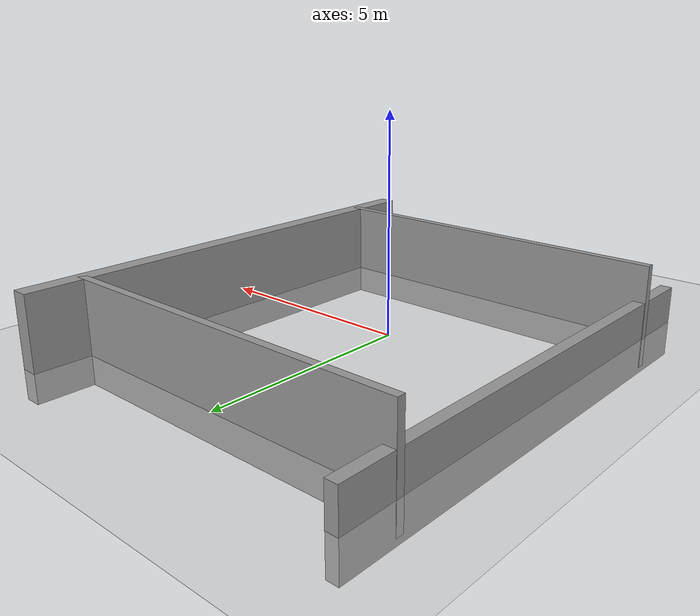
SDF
<sdf version="1.7">
 <world name="default">
  <light name="sun" type="directional">
   <pose>0 0 10 0 -0 0</pose>
   <diffuse>0.8 0.8 0.8 1</diffuse>
   <specular>0.2 0.2 0.2 1</specular>
   <attenuation>
    <range>1000</range>
    <constant>0.9</constant>
    <linear>0.01</linear>
    <quadratic>0.001</quadratic>
   </attenuation>
   <direction>-0.5 0.1 -0.9</direction>
   <spot><inner_angle>0</inner_angle><outer_angle>0</outer_angle><falloff>0</falloff></spot>
  </light>
  <model name="ground_plane">
   <static>1</static>
   <link name="link">
    <collision name="collision">
     <geometry><plane><normal>0 0 1</normal><size>100 100</size></plane></geometry>
     <surface>
      <contact><collide_bitmask>65535</collide_bitmask></contact>
      <friction><ode><mu>100</mu><mu2>50</mu2></ode></friction>
     </surface>
    </collision>
    <visual name="visual">
     <cast_shadows>0</cast_shadows>
     <geometry><plane><normal>0 0 1</normal><size>100 100</size></plane></geometry>
     <material>
      <script><uri>file://media/materials/scripts/gazebo.material</uri><name>Gazebo/Grey</name></script>
     </material>
    </visual>
   </link>
  </model>
  <gravity>0 0 -9.8</gravity>
  <magnetic_field>6e-06 2.3e-05 -4.2e-05</magnetic_field>
  <atmosphere type="adiabatic"/>
  <physics type="ode">
   <max_step_size>0.001</max_step_size>
   <real_time_factor>1</real_time_factor>
   <real_time_update_rate>1000</real_time_update_rate>
  </physics>
  <scene><ambient>0.4 0.4 0.4 1</ambient><background>0.7 0.7 0.7 1</background><shadows>1</shadows></scene>
  <spherical_coordinates>
   <surface_model>EARTH_WGS84</surface_model>
   <latitude_deg>0</latitude_deg>
   <longitude_deg>0</longitude_deg>
   <elevation>0</elevation>
   <heading_deg>0</heading_deg>
  </spherical_coordinates>
  <model name="wall_real">
   <link name="link_0">
    <inertial>
     <mass>6.36824</mass>
     <inertia><ixx>54.2398</ixx><ixy>0</ixy><ixz>0</ixz><iyy>3.02135</iyy><iyz>0</iyz><izz>51.2978</izz></inertia>
    </inertial>
    <pose>1e-06 3e-06 0 0 -0 0</pose>
    <visual name="visual">
     <geometry><box><size>0.405112 11.2086 2.37035</size></box></geometry>
     <material>
      <lighting>1</lighting>
      <script><uri>file://media/materials/scripts/gazebo.material</uri><name>Gazebo/Grey</name></script>
      <shader type="pixel"/>
     </material>
    </visual>
    <collision name="collision">
     <geometry><box><size>0.405112 11.2086 2.37035</size></box></geometry>
     <surface>
      <friction>
       <ode><mu>1</mu><mu2>1</mu2><fdir1>0 0 0</fdir1><slip1>0</slip1><slip2>0</slip2></ode>
       <torsional>
        <coefficient>1</coefficient>
        <patch_radius>0</patch_radius>
        <surface_radius>0</surface_radius>
        <use_patch_radius>1</use_patch_radius>
        <ode><slip>0</slip></ode>
       </torsional>
      </friction>
      <bounce><restitution_coefficient>0</restitution_coefficient><threshold>1e+06</threshold></bounce>
      <contact>
       <collide_without_contact>0</collide_without_contact>
       <collide_without_contact_bitmask>1</collide_without_contact_bitmask>
       <collide_bitmask>1</collide_bitmask>
       <ode>
        <soft_cfm>0</soft_cfm>
        <soft_erp>0.2</soft_erp>
        <kp>1e+13</kp>
        <kd>1</kd>
        <max_vel>0.01</max_vel>
        <min_depth>0</min_depth>
       </ode>
       <bullet>
        <split_impulse>1</split_impulse>
        <split_impulse_penetration_threshold>-0.01</split_impulse_penetration_threshold>
        <soft_cfm>0</soft_cfm>
        <soft_erp>0.2</soft_erp>
        <kp>1e+13</kp>
        <kd>1</kd>
       </bullet>
      </contact>
     </surface>
    </collision>
   </link>
   <static>0</static>
   <pose>4.19255 0.696276 0.5 0 -0 0</pose>
  </model>
  <model name="wall_real_0">
   <link name="link_0">
    <inertial>
     <mass>6.36824</mass>
     <inertia><ixx>54.2398</ixx><ixy>0</ixy><ixz>0</ixz><iyy>3.02135</iyy><iyz>0</iyz><izz>51.2978</izz></inertia>
    </inertial>
    <pose>1e-06 3e-06 0 0 -0 0</pose>
    <visual name="visual">
     <geometry><box><size>0.273387 11.2551 1.66921</size></box></geometry>
     <material>
      <lighting>1</lighting>
      <script><uri>file://media/materials/scripts/gazebo.material</uri><name>Gazebo/Grey</name></script>
      <shader type="pixel"/>
     </material>
    </visual>
    <collision name="collision">
     <geometry><box><size>0.273387 11.2551 1.66921</size></box></geometry>
     <surface>
      <friction>
       <ode><mu>1</mu><mu2>1</mu2><fdir1>0 0 0</fdir1><slip1>0</slip1><slip2>0</slip2></ode>
       <torsional>
        <coefficient>1</coefficient>
        <patch_radius>0</patch_radius>
        <surface_radius>0</surface_radius>
        <use_patch_radius>1</use_patch_radius>
        <ode><slip>0</slip></ode>
       </torsional>
      </friction>
      <bounce><restitution_coefficient>0</restitution_coefficient><threshold>1e+06</threshold></bounce>
      <contact>
       <collide_without_contact>0</collide_without_contact>
       <collide_without_contact_bitmask>1</collide_without_contact_bitmask>
       <collide_bitmask>1</collide_bitmask>
       <ode>
        <soft_cfm>0</soft_cfm>
        <soft_erp>0.2</soft_erp>
        <kp>1e+13</kp>
        <kd>1</kd>
        <max_vel>0.01</max_vel>
        <min_depth>0</min_depth>
       </ode>
       <bullet>
        <split_impulse>1</split_impulse>
        <split_impulse_penetration_threshold>-0.01</split_impulse_penetration_threshold>
        <soft_cfm>0</soft_cfm>
        <soft_erp>0.2</soft_erp>
        <kp>1e+13</kp>
        <kd>1</kd>
       </bullet>
      </contact>
     </surface>
    </collision>
   </link>
   <static>0</static>
   <pose>-4.21092 0.592586 0 0 -0 0</pose>
  </model>
  <model name="wall_real_clone">
   <link name="link_0">
    <inertial>
     <mass>6.36824</mass>
     <inertia><ixx>54.2398</ixx><ixy>0</ixy><ixz>0</ixz><iyy>3.02135</iyy><iyz>0</iyz><izz>51.2978</izz></inertia>
    </inertial>
    <pose>1e-06 3e-06 0 0 -0 0</pose>
    <visual name="visual">
     <geometry><box><size>0.184493 8.61735 2.37035</size></box></geometry>
     <material>
      <lighting>1</lighting>
      <script><uri>file://media/materials/scripts/gazebo.material</uri><name>Gazebo/Grey</name></script>
      <shader type="pixel"/>
     </material>
    </visual>
    <collision name="collision">
     <geometry><box><size>0.184493 8.61735 2.37035</size></box></geometry>
     <surface>
      <friction>
       <ode><mu>1</mu><mu2>1</mu2><fdir1>0 0 0</fdir1><slip1>0</slip1><slip2>0</slip2></ode>
       <torsional>
        <coefficient>1</coefficient>
        <patch_radius>0</patch_radius>
        <surface_radius>0</surface_radius>
        <use_patch_radius>1</use_patch_radius>
        <ode><slip>0</slip></ode>
       </torsional>
      </friction>
      <bounce><restitution_coefficient>0</restitution_coefficient><threshold>1e+06</threshold></bounce>
      <contact>
       <collide_without_contact>0</collide_without_contact>
       <collide_without_contact_bitmask>1</collide_without_contact_bitmask>
       <collide_bitmask>1</collide_bitmask>
       <ode>
        <soft_cfm>0</soft_cfm>
        <soft_erp>0.2</soft_erp>
        <kp>1e+13</kp>
        <kd>1</kd>
        <max_vel>0.01</max_vel>
        <min_depth>0</min_depth>
       </ode>
       <bullet>
        <split_impulse>1</split_impulse>
        <split_impulse_penetration_threshold>-0.01</split_impulse_penetration_threshold>
        <soft_cfm>0</soft_cfm>
        <soft_erp>0.2</soft_erp>
        <kp>1e+13</kp>
        <kd>1</kd>
       </bullet>
      </contact>
     </surface>
    </collision>
   </link>
   <static>0</static>
   <pose>-0.043725 4.89776 0.5 0 0 -1.56604</pose>
  </model>
  <model name="wall_real_clone_clone">
   <link name="link_0">
    <inertial>
     <mass>6.36824</mass>
     <inertia><ixx>54.2398</ixx><ixy>0</ixy><ixz>0</ixz><iyy>3.02135</iyy><iyz>0</iyz><izz>51.2978</izz></inertia>
    </inertial>
    <pose>1e-06 3e-06 0 0 -0 0</pose>
    <visual name="visual">
     <geometry><box><size>0.184493 8.61735 2.37035</size></box></geometry>
     <material>
      <lighting>1</lighting>
      <script><uri>file://media/materials/scripts/gazebo.material</uri><name>Gazebo/Grey</name></script>
      <shader type="pixel"/>
     </material>
    </visual>
    <collision name="collision">
     <geometry><box><size>0.184493 8.61735 2.37035</size></box></geometry>
     <surface>
      <friction>
       <ode><mu>1</mu><mu2>1</mu2><fdir1>0 0 0</fdir1><slip1>0</slip1><slip2>0</slip2></ode>
       <torsional>
        <coefficient>1</coefficient>
        <patch_radius>0</patch_radius>
        <surface_radius>0</surface_radius>
        <use_patch_radius>1</use_patch_radius>
        <ode><slip>0</slip></ode>
       </torsional>
      </friction>
      <bounce><restitution_coefficient>0</restitution_coefficient><threshold>1e+06</threshold></bounce>
      <contact>
       <collide_without_contact>0</collide_without_contact>
       <collide_without_contact_bitmask>1</collide_without_contact_bitmask>
       <collide_bitmask>1</collide_bitmask>
       <ode>
        <soft_cfm>0</soft_cfm>
        <soft_erp>0.2</soft_erp>
        <kp>1e+13</kp>
        <kd>1</kd>
        <max_vel>0.01</max_vel>
        <min_depth>0</min_depth>
       </ode>
       <bullet>
        <split_impulse>1</split_impulse>
        <split_impulse_penetration_threshold>-0.01</split_impulse_penetration_threshold>
        <soft_cfm>0</soft_cfm>
        <soft_erp>0.2</soft_erp>
        <kp>1e+13</kp>
        <kd>1</kd>
       </bullet>
      </contact>
     </surface>
    </collision>
   </link>
   <static>0</static>
   <pose>-0.053983 -3.62073 0.5 0 0 -1.56604</pose>
  </model>
  <model name="unit_box">
   <pose>-0.121857 -5.89291 0.232958 0 -0 0</pose>
   <link name="link">
    <inertial>
     <mass>1</mass>
     <inertia>
      <ixx>0.166667</ixx>
      <ixy>0</ixy>
      <ixz>0</ixz>
      <iyy>0.166667</iyy>
      <iyz>0</iyz>
      <izz>0.166667</izz>
     </inertia>
    </inertial>
    <collision name="collision"><geometry><box><size>1 1 0.999999</size></box></geometry></collision>
    <visual name="visual">
     <geometry><box><size>1 1 0.999999</size></box></geometry>
     <material>
      <script><name>Gazebo/Grey</name><uri>file://media/materials/scripts/gazebo.material</uri></script>
     </material>
    </visual>
   </link>
  </model>
 </world>
</sdf>
